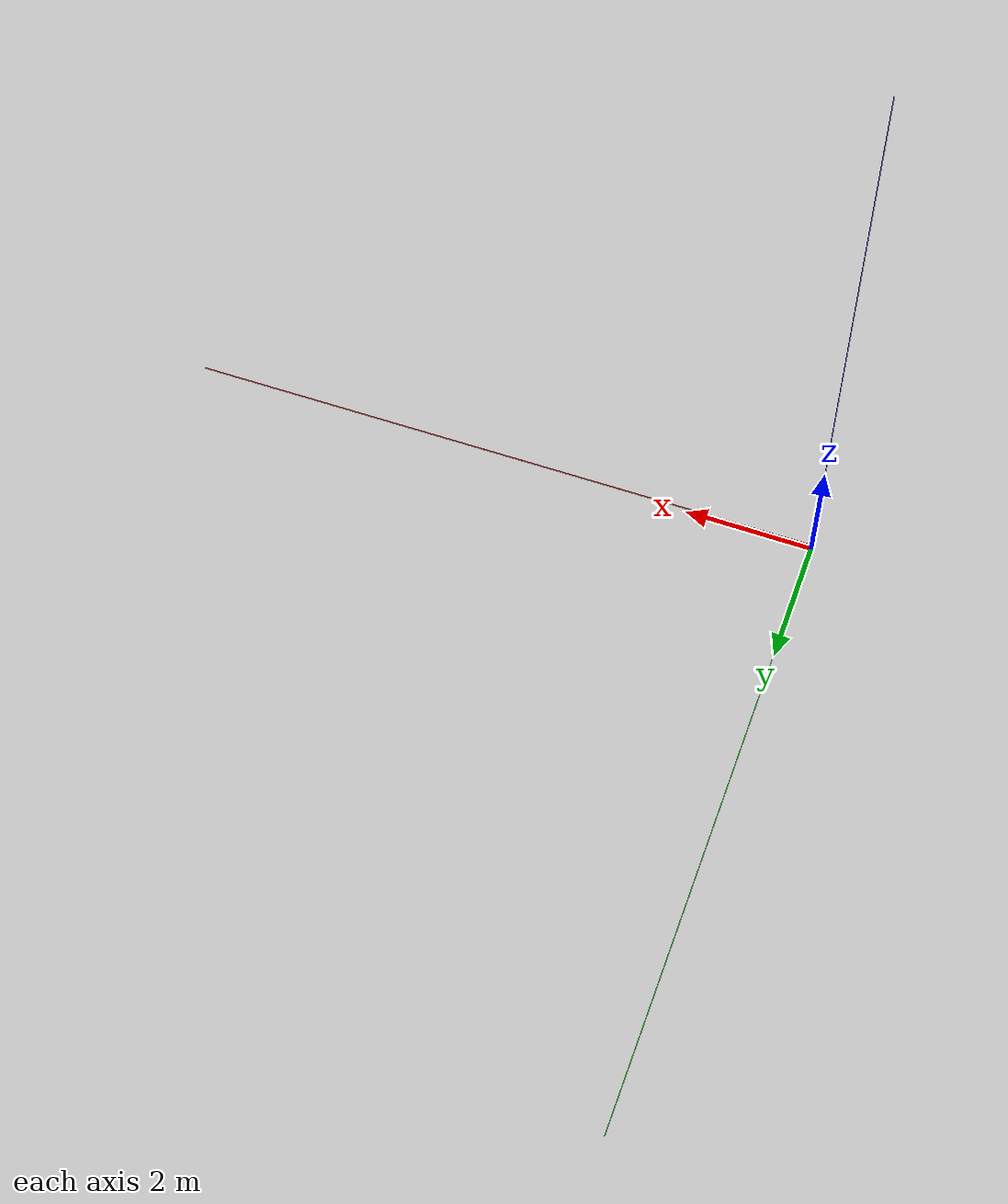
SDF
<sdf version="1.9">
 <world name="iris_runway">
  <physics name="1ms" type="ignore">
   <max_step_size>0.001</max_step_size>
   <real_time_factor>1.0</real_time_factor>
  </physics>
  <plugin filename="gz-sim-physics-system" name="gz::sim::systems::Physics"/>
  <plugin filename="gz-sim-sensors-system" name="gz::sim::systems::Sensors">
   <render_engine>ogre2</render_engine>
  </plugin>
  <plugin filename="gz-sim-user-commands-system" name="gz::sim::systems::UserCommands"/>
  <plugin filename="gz-sim-scene-broadcaster-system" name="gz::sim::systems::SceneBroadcaster"/>
  <plugin filename="gz-sim-imu-system" name="gz::sim::systems::Imu"/>
  <plugin filename="gz-sim-navsat-system" name="gz::sim::systems::NavSat"/>
  <scene><ambient>1.0 1.0 1.0</ambient><background>0.8 0.8 0.8</background></scene>
  <spherical_coordinates>
   <latitude_deg>-35.363262</latitude_deg>
   <longitude_deg>149.165237</longitude_deg>
   <elevation>584</elevation>
   <heading_deg>0</heading_deg>
   <surface_model>EARTH_WGS84</surface_model>
  </spherical_coordinates>
  <light type="directional" name="sun">
   <pose>0 0 10 0 0 0</pose>
   <diffuse>0.8 0.8 0.8 1</diffuse>
   <specular>0.8 0.8 0.8 1</specular>
   <attenuation>
    <range>1000</range>
    <constant>0.9</constant>
    <linear>0.01</linear>
    <quadratic>0.001</quadratic>
   </attenuation>
   <direction>-0.5 0.1 -0.9</direction>
  </light>
  <model name="axes">
   <static>1</static>
   <link name="link">
    <visual name="r">
     <cast_shadows>0</cast_shadows>
     <pose>5 0 0.1 0 0 0</pose>
     <geometry><box><size>10 0.01 0.01</size></box></geometry>
     <material>
      <ambient>1 0 0 0.8</ambient>
      <diffuse>1 0 0 0.8</diffuse>
      <emissive>1 0 0 0.8</emissive>
      <specular>0.5 0.5 0.5 0.8</specular>
     </material>
    </visual>
    <visual name="g">
     <cast_shadows>0</cast_shadows>
     <pose>0 5 0.1 0 0 0</pose>
     <geometry><box><size>0.01 10 0.01</size></box></geometry>
     <material>
      <ambient>0 1 0 0.8</ambient>
      <diffuse>0 1 0 0.8</diffuse>
      <emissive>0 1 0 0.8</emissive>
      <specular>0.5 0.5 0.5 0.8</specular>
     </material>
    </visual>
    <visual name="b">
     <cast_shadows>0</cast_shadows>
     <pose>0 0 5.1 0 0 0</pose>
     <geometry><box><size>0.01 0.01 10</size></box></geometry>
     <material>
      <ambient>0 0 1 0.8</ambient>
      <diffuse>0 0 1 0.8</diffuse>
      <emissive>0 0 1 0.8</emissive>
      <specular>0.5 0.5 0.5 0.8</specular>
     </material>
    </visual>
    <sensor name="navsat_sensor" type="navsat"><always_on>1</always_on><update_rate>1</update_rate></sensor>
   </link>
  </model>
  <include><uri>model://runway</uri><pose degrees="true">-29 545 0 0 0 363</pose></include>
 </world>
</sdf>

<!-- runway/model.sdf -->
<sdf version="1.9">
  <model name="runway">
    <static>true</static>
    <link name="link">
      <collision name="collision">
        <geometry>
          <plane>
            <normal>0 0 1</normal>
          </plane>
        </geometry>
      </collision>
      <visual name="runway">
        <pose degrees="true">0 0 0 0 0 90</pose>
        <cast_shadows>false</cast_shadows>
        <geometry>
          <plane>
            <normal>0 0 1</normal>
            <size>1500 100</size>
          </plane>
        </geometry>
        <material>
          <ambient>0.8 0.8 0.8 1</ambient>
          <diffuse>0.8 0.8 0.8 1</diffuse>
          <specular>0.1 0.1 0.1 1</specular>
          <pbr>
            <metal>
              <albedo_map>materials/textures/runway.png</albedo_map>
              <roughness>0.6</roughness>
              <metalness>0</metalness>
            </metal>
          </pbr>
        </material>
      </visual>
      <visual name="airfield">
        <pose>0 0 -0.01 0 0 0</pose>
        <cast_shadows>false</cast_shadows>
        <geometry>
          <mesh>
            <uri>model://runway/meshes/airfield.dae</uri>
          </mesh>
        </geometry>
        <material>
          <ambient>0.8 0.8 0.8 1</ambient>
          <diffuse>0.8 0.8 0.8 1</diffuse>
          <specular>0.1 0.1 0.1 1</specular>
          <pbr>
            <metal>
              <albedo_map>materials/textures/Grass004_2K_Color.jpg</albedo_map>
              <ambient_occlusion_map>materials/textures/Grass004_2K_AmbientOcclusion.jpg</ambient_occlusion_map>
              <normal_map>materials/textures/Grass004_2K_NormalGL.jpg</normal_map>
              <roughness_map>materials/textures/Grass004_2K_Roughness.jpg</roughness_map>
              <roughness>0.6</roughness>
              <metalness>0</metalness>
            </metal>
          </pbr>
        </material>
      </visual>
    </link>
  </model>
</sdf>
